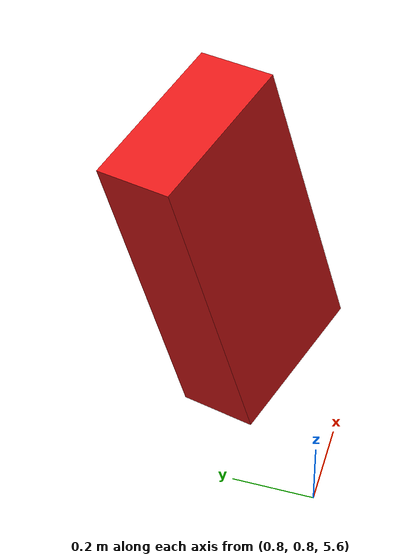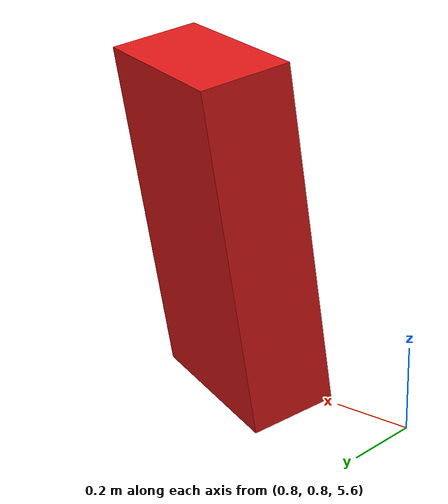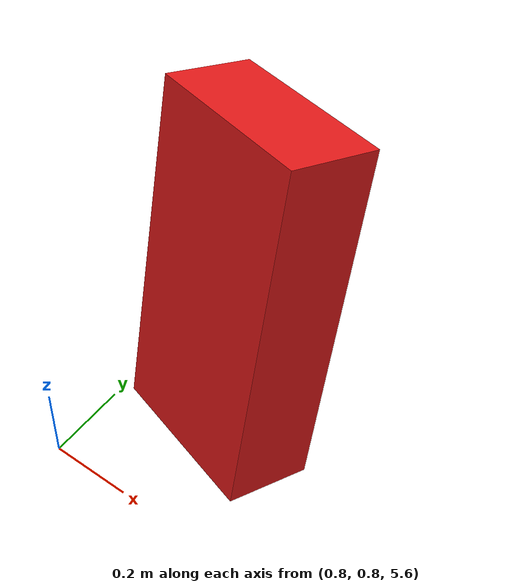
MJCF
<mujoco model="Humanoid and 100 objects">
    <compiler angle="degree"/>

    <option timestep="0.01" iterations="50" solver="PGS" jacobian="sparse" cone="elliptic" tolerance="1e-10"/>

    <size njmax="5000" nconmax="2000" nstack="1000000000"/>

    <default>
        <geom solimp=".9 .9 .01"/>

        <default class="object5">
			<geom type="box" material="geom" rgba=".9 .1 .1 1" size="0.400000 0.200000 0.100000"/>
        </default>
    </default>

    <asset>
        <texture type="skybox" builtin="gradient" width="128" height="128" rgb1=".4 .6 .8" rgb2="0 0 0"/>
        <texture name="texgeom" type="cube" builtin="flat" mark="cross" width="128" height="128"
            rgb1="0.6 0.6 0.6" rgb2="0.6 0.6 0.6" markrgb="1 1 1"/>
        <texture name="texplane" type="2d" builtin="checker" rgb1=".4 .4 .4" rgb2=".6 .6 .6"
            width="512" height="512"/>
        <material name='geom' texture="texgeom" texuniform="true"/>
        <material name='MatPlane' reflectance='0.3' texture="texplane" texrepeat="1 1" texuniform="true"/>
    </asset>

    <visual>
        <quality shadowsize="4096" offsamples="8"/>
        <map znear="0.1" force="0.05"/>
    </visual>

    <statistic extent="4"/>

    <worldbody>
        <light directional="true" diffuse=".8 .8 .8" pos="0 0 10" dir="0 0 -10"/>

        <geom pos="0 0 0" type="plane" size="3 3 .5" rgba=".7 .7 .7 1" material="MatPlane"/>
		<body pos="1.100257 1.100002 6.100763" quat="0.334549 -0.614225 -0.477166 -0.532088"> <freejoint/> <geom class="object5"/> </body>

    </worldbody>
</mujoco>
